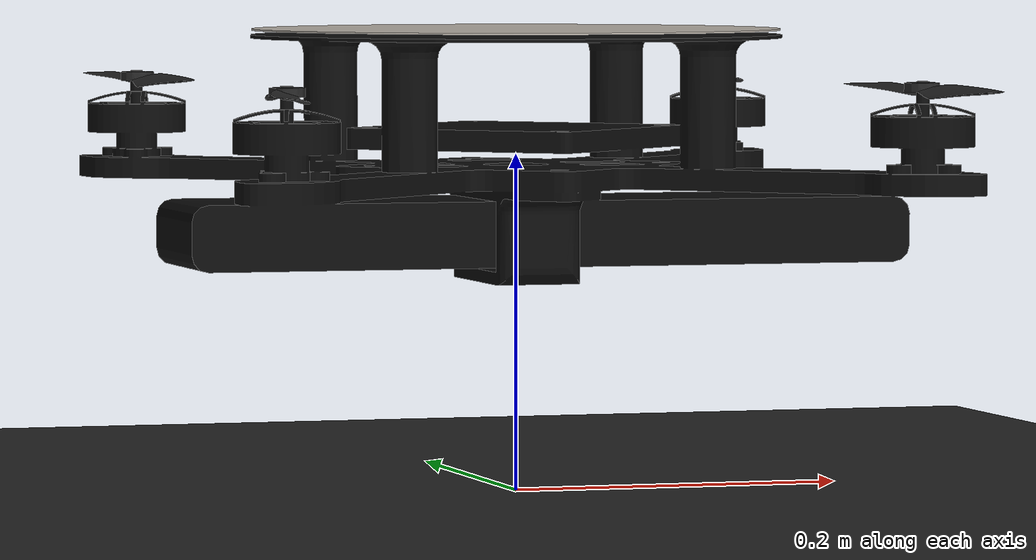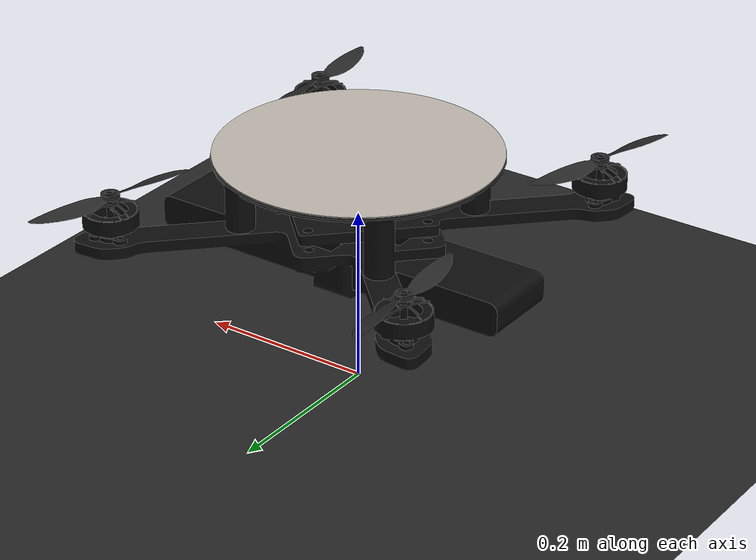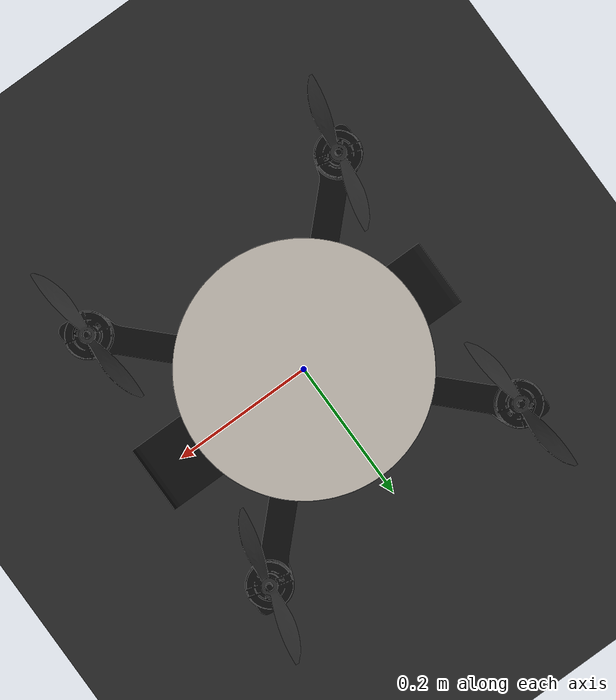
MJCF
<mujoco model="swift_pico">

  <option gravity="0 0 -9.81" timestep="0.005" integrator="RK4"/>

  <visual>
    <!-- Headlight follows the active camera — at z=20 pointing down it acts as overhead sun -->
    <headlight ambient="0.7 0.7 0.7" diffuse="0.9 0.9 0.9" specular="0.1 0.1 0.1"/>
    <rgba haze="0.0 0.0 0.0 1"/>
    <global azimuth="120" elevation="-20" offwidth="1000" offheight="1000"/>
  </visual>

  <asset>
    <!-- ── Skybox / floor ── -->
    <texture type="skybox" builtin="gradient" rgb1="0.4 0.6 0.8" rgb2="0 0 0"
             width="512" height="512"/>
    <material name="floor_mat" rgba="0.15 0.15 0.15 1" reflectance="0.0"/>

    <mesh name="base_link" file="meshes/base_link.obj" scale="5 5 5"/>
    <mesh name="m1_link"   file="meshes/m1_link.obj"   scale="5 5 5"/>
    <mesh name="m4_link"   file="meshes/m4_link.obj"   scale="5 5 5"/>

    <mesh name="whycode_marker" file="meshes/whycon_marker.obj" scale="0.5 0.5 0.5"/>
    <texture name="whycode_marker_tex" type="2d" file="meshes/textures/whycode_marker_1.png"/>
    <material name="whycode_marker_mat" texture="whycode_marker_tex"
              specular="0.0" shininess="0.0" reflectance="0.0"/>
  </asset>

  <worldbody>
    <light pos="0 0 10" dir="0 0 -1" directional="true"
           diffuse="0.9 0.9 0.9" specular="0.1 0.1 0.1"/>
    <light pos="0 0 20" dir="0 0 -1" directional="true"
           diffuse="0.8 0.8 0.8" specular="0.0 0.0 0.0" castshadow="false"/>
    <geom name="floor" type="plane" size="20 20 0.1" material="floor_mat"
          contype="1" conaffinity="1"/>

    <camera name="top_cam" pos="0 0 20" xyaxes="1 0 0 0 1 0" fovy="60"/>

    <body name="drone" pos="0 0 0.3">
      <freejoint name="drone_freejoint"/>

      <!-- Physics collision box (matches SDF: 0.47×0.47×0.11 at z=-0.12) -->
      <inertial mass="1.5" pos="0 0 0"
                fullinertia="0.0347563 0.07 0.0977 0 0 0"/>
      <geom name="body_col" type="box" size="0.235 0.235 0.055" pos="0 0 -0.12"
            rgba="0 0 0 0" contype="1" conaffinity="1"/>

      <!-- ── Visual meshes (no collision) ── -->

      <geom name="body_vis" type="mesh" mesh="base_link" pos="0 0 -0.029"
            rgba="0.05 0.05 0.05 1" contype="0" conaffinity="0"/>

      <!-- m1: front-right, ccw — dark gray so bright propeller edges do not
           create circular ring patterns that confuse WhyCon's circle detector -->
      <body name="prop_m1" pos="0.187 -0.187 -0.059">
        <joint name="spin_m1" type="hinge" axis="0 0 1"
               limited="false" damping="0" armature="0" frictionloss="0"/>
        <geom name="m1_vis" type="mesh" mesh="m1_link"
              rgba="0.15 0.15 0.15 1" contype="0" conaffinity="0"/>
      </body>

      <!-- m2: back-left, ccw -->
      <body name="prop_m2" pos="-0.187 0.187 -0.059">
        <joint name="spin_m2" type="hinge" axis="0 0 1"
               limited="false" damping="0" armature="0" frictionloss="0"/>
        <geom name="m2_vis" type="mesh" mesh="m1_link"
              rgba="0.15 0.15 0.15 1" contype="0" conaffinity="0"/>
      </body>

      <!-- m3: front-left, cw -->
      <body name="prop_m3" pos="0.187 0.187 -0.059">
        <joint name="spin_m3" type="hinge" axis="0 0 1"
               limited="false" damping="0" armature="0" frictionloss="0"/>
        <geom name="m3_vis" type="mesh" mesh="m4_link"
              rgba="0.15 0.15 0.15 1" contype="0" conaffinity="0"/>
      </body>

      <!-- m4: back-right, cw -->
      <body name="prop_m4" pos="-0.187 -0.187 -0.059">
        <joint name="spin_m4" type="hinge" axis="0 0 1"
               limited="false" damping="0" armature="0" frictionloss="0"/>
        <geom name="m4_vis" type="mesh" mesh="m4_link"
              rgba="0.15 0.15 0.15 1" contype="0" conaffinity="0"/>
      </body>

      <!-- WhyCode marker ID 1. -->
      <geom name="whycode_marker" type="mesh" mesh="whycode_marker"
            material="whycode_marker_mat" pos="0 0 -0.026"
            contype="0" conaffinity="0"/>

      <!-- ── Thrust sites (motor force application points) ── -->
      <!-- m1 FR ccw: reactive yaw = -Km = -0.016 -->
      <site name="thrust_m1" pos="0.19 -0.19 -0.12" size="0.01" rgba="1 0 0 0"/>
      <!-- m2 BL ccw: reactive yaw = -Km -->
      <site name="thrust_m2" pos="-0.19 0.19 -0.12" size="0.01" rgba="1 0 0 0"/>
      <!-- m3 FL cw: reactive yaw = +Km = +0.016 -->
      <site name="thrust_m3" pos="0.19 0.19 -0.12" size="0.01" rgba="0 0 1 0"/>
      <!-- m4 BR cw: reactive yaw = +Km -->
      <site name="thrust_m4" pos="-0.19 -0.19 -0.12" size="0.01" rgba="0 0 1 0"/>

    </body>
  </worldbody>

  <actuator>
    <motor name="m1" site="thrust_m1" gear="0 0 1 0 0 -0.016" ctrllimited="true" ctrlrange="0 5.47"/>
    <motor name="m2" site="thrust_m2" gear="0 0 1 0 0 -0.016" ctrllimited="true" ctrlrange="0 5.47"/>
    <motor name="m3" site="thrust_m3" gear="0 0 1 0 0  0.016" ctrllimited="true" ctrlrange="0 5.47"/>
    <motor name="m4" site="thrust_m4" gear="0 0 1 0 0  0.016" ctrllimited="true" ctrlrange="0 5.47"/>
  </actuator>

</mujoco>
